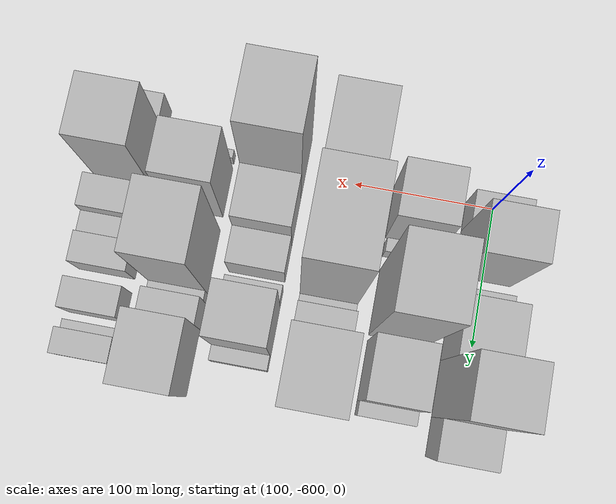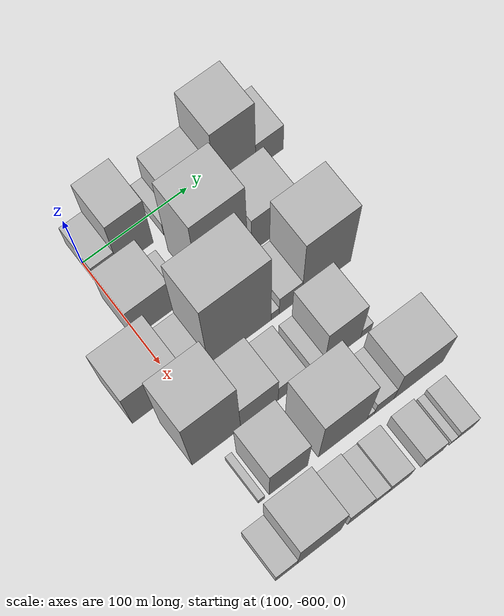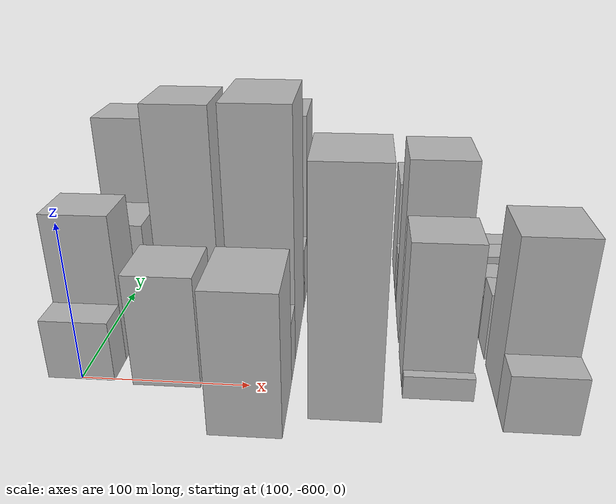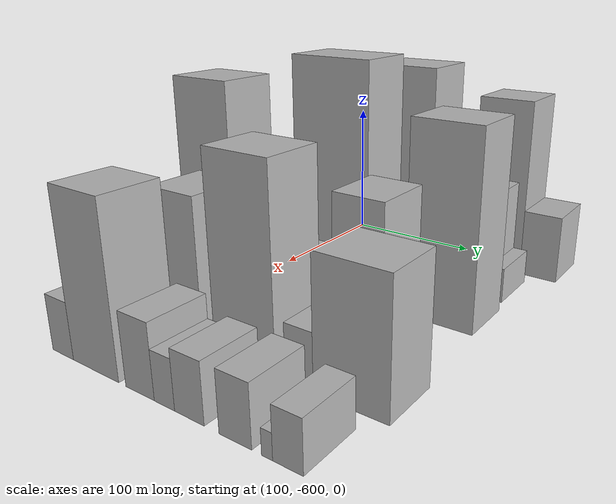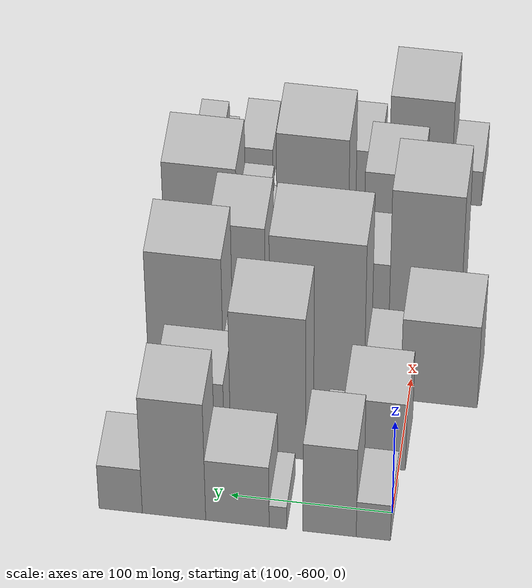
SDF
<sdf version="1.6">
 <world name="default">
  <model name="building_9">
   <static>1</static>
   <pose>100.0000 -590.5228 0 0.000000 0.000000 0.000000</pose>
   <link name="link">
    <pose>0 0 19.50 0 0 0</pose>
    <collision name="collision"><geometry><box><size>40.0000 21.0584 39.0000</size></box></geometry></collision>
    <visual name="visual">
     <cast_shadows>0</cast_shadows>
     <geometry><box><size>40.0000 21.0584 39.0000</size></box></geometry>
     <material>
      <script>
       <uri>model://HANNAS_wall/materials/scripts</uri>
       <uri>model://HANNAS_wall/materials/textures</uri>
       <name>vrc/HANNAS_wall</name>
      </script>
     </material>
    </visual>
   </link>
  </model>
  <model name="building_10">
   <static>1</static>
   <pose>100.0000 -563.5756 0 0.000000 0.000000 0.000000</pose>
   <link name="link">
    <pose>0 0 48.00 0 0 0</pose>
    <collision name="collision"><geometry><box><size>40.0000 32.8358 96.0000</size></box></geometry></collision>
    <visual name="visual">
     <cast_shadows>0</cast_shadows>
     <geometry><box><size>40.0000 32.8358 96.0000</size></box></geometry>
     <material>
      <script>
       <uri>model://HANNAS_wall/materials/scripts</uri>
       <uri>model://HANNAS_wall/materials/textures</uri>
       <name>vrc/HANNAS_wall</name>
      </script>
     </material>
    </visual>
   </link>
  </model>
  <model name="building_11">
   <static>1</static>
   <pose>100.0000 -531.7365 0 0.000000 0.000000 0.000000</pose>
   <link name="link">
    <pose>0 0 12.00 0 0 0</pose>
    <collision name="collision"><geometry><box><size>40.0000 10.8425 24.0000</size></box></geometry></collision>
    <visual name="visual">
     <cast_shadows>0</cast_shadows>
     <geometry><box><size>40.0000 10.8425 24.0000</size></box></geometry>
     <material>
      <script>
       <uri>model://HANNAS_wall/materials/scripts</uri>
       <uri>model://HANNAS_wall/materials/textures</uri>
       <name>vrc/HANNAS_wall</name>
      </script>
     </material>
    </visual>
   </link>
  </model>
  <model name="building_12">
   <static>1</static>
   <pose>100.0000 -506.7196 0 0.000000 0.000000 0.000000</pose>
   <link name="link">
    <pose>0 0 33.00 0 0 0</pose>
    <collision name="collision"><geometry><box><size>40.0000 39.1913 66.0000</size></box></geometry></collision>
    <visual name="visual">
     <cast_shadows>0</cast_shadows>
     <geometry><box><size>40.0000 39.1913 66.0000</size></box></geometry>
     <material>
      <script>
       <uri>model://HANNAS_wall/materials/scripts</uri>
       <uri>model://HANNAS_wall/materials/textures</uri>
       <name>vrc/HANNAS_wall</name>
      </script>
     </material>
    </visual>
   </link>
  </model>
  <model name="building_13">
   <static>1</static>
   <pose>100.0000 -467.5035 0 0.000000 0.000000 0.000000</pose>
   <link name="link">
    <pose>0 0 63.00 0 0 0</pose>
    <collision name="collision"><geometry><box><size>40.0000 39.2408 126.0000</size></box></geometry></collision>
    <visual name="visual">
     <cast_shadows>0</cast_shadows>
     <geometry><box><size>40.0000 39.2408 126.0000</size></box></geometry>
     <material>
      <script>
       <uri>model://HANNAS_wall/materials/scripts</uri>
       <uri>model://HANNAS_wall/materials/textures</uri>
       <name>vrc/HANNAS_wall</name>
      </script>
     </material>
    </visual>
   </link>
  </model>
  <model name="building_14">
   <static>1</static>
   <pose>100.0000 -434.4610 0 0.000000 0.000000 0.000000</pose>
   <link name="link">
    <pose>0 0 24.00 0 0 0</pose>
    <collision name="collision"><geometry><box><size>40.0000 26.8443 48.0000</size></box></geometry></collision>
    <visual name="visual">
     <cast_shadows>0</cast_shadows>
     <geometry><box><size>40.0000 26.8443 48.0000</size></box></geometry>
     <material>
      <script>
       <uri>model://HANNAS_wall/materials/scripts</uri>
       <uri>model://HANNAS_wall/materials/textures</uri>
       <name>vrc/HANNAS_wall</name>
      </script>
     </material>
    </visual>
   </link>
  </model>
  <model name="building_64">
   <static>1</static>
   <pose>152.0000 -584.7914 0 0.000000 0.000000 0.000000</pose>
   <link name="link">
    <pose>0 0 36.00 0 0 0</pose>
    <collision name="collision"><geometry><box><size>40.0000 38.5706 72.0000</size></box></geometry></collision>
    <visual name="visual">
     <cast_shadows>0</cast_shadows>
     <geometry><box><size>40.0000 38.5706 72.0000</size></box></geometry>
     <material>
      <script>
       <uri>model://HANNAS_wall/materials/scripts</uri>
       <uri>model://HANNAS_wall/materials/textures</uri>
       <name>vrc/HANNAS_wall</name>
      </script>
     </material>
    </visual>
   </link>
  </model>
  <model name="building_65">
   <static>1</static>
   <pose>152.0000 -556.7208 0 0.000000 0.000000 0.000000</pose>
   <link name="link">
    <pose>0 0 10.50 0 0 0</pose>
    <collision name="collision"><geometry><box><size>40.0000 9.5705 21.0000</size></box></geometry></collision>
    <visual name="visual">
     <cast_shadows>0</cast_shadows>
     <geometry><box><size>40.0000 9.5705 21.0000</size></box></geometry>
     <material>
      <script>
       <uri>model://HANNAS_wall/materials/scripts</uri>
       <uri>model://HANNAS_wall/materials/textures</uri>
       <name>vrc/HANNAS_wall</name>
      </script>
     </material>
    </visual>
   </link>
  </model>
  <model name="building_66">
   <static>1</static>
   <pose>152.0000 -518.6383 0 0.000000 0.000000 0.000000</pose>
   <link name="link">
    <pose>0 0 75.00 0 0 0</pose>
    <collision name="collision"><geometry><box><size>40.0000 46.5944 150.0000</size></box></geometry></collision>
    <visual name="visual">
     <cast_shadows>0</cast_shadows>
     <geometry><box><size>40.0000 46.5944 150.0000</size></box></geometry>
     <material>
      <script>
       <uri>model://HANNAS_wall/materials/scripts</uri>
       <uri>model://HANNAS_wall/materials/textures</uri>
       <name>vrc/HANNAS_wall</name>
      </script>
     </material>
    </visual>
   </link>
  </model>
  <model name="building_67">
   <static>1</static>
   <pose>152.0000 -470.3975 0 0.000000 0.000000 0.000000</pose>
   <link name="link">
    <pose>0 0 36.00 0 0 0</pose>
    <collision name="collision"><geometry><box><size>40.0000 41.8873 72.0000</size></box></geometry></collision>
    <visual name="visual">
     <cast_shadows>0</cast_shadows>
     <geometry><box><size>40.0000 41.8873 72.0000</size></box></geometry>
     <material>
      <script>
       <uri>model://HANNAS_wall/materials/scripts</uri>
       <uri>model://HANNAS_wall/materials/textures</uri>
       <name>vrc/HANNAS_wall</name>
      </script>
     </material>
    </visual>
   </link>
  </model>
  <model name="building_68">
   <static>1</static>
   <pose>152.0000 -444.4953 0 0.000000 0.000000 0.000000</pose>
   <link name="link">
    <pose>0 0 12.00 0 0 0</pose>
    <collision name="collision"><geometry><box><size>40.0000 9.9171 24.0000</size></box></geometry></collision>
    <visual name="visual">
     <cast_shadows>0</cast_shadows>
     <geometry><box><size>40.0000 9.9171 24.0000</size></box></geometry>
     <material>
      <script>
       <uri>model://HANNAS_wall/materials/scripts</uri>
       <uri>model://HANNAS_wall/materials/textures</uri>
       <name>vrc/HANNAS_wall</name>
      </script>
     </material>
    </visual>
   </link>
  </model>
  <model name="building_106">
   <static>1</static>
   <pose>204.0000 -619.0146 0 0.000000 0.000000 0.000000</pose>
   <link name="link">
    <pose>0 0 43.50 0 0 0</pose>
    <collision name="collision"><geometry><box><size>40.0000 48.0511 87.0000</size></box></geometry></collision>
    <visual name="visual">
     <cast_shadows>0</cast_shadows>
     <geometry><box><size>40.0000 48.0511 87.0000</size></box></geometry>
     <material>
      <script>
       <uri>model://HANNAS_wall/materials/scripts</uri>
       <uri>model://HANNAS_wall/materials/textures</uri>
       <name>vrc/HANNAS_wall</name>
      </script>
     </material>
    </visual>
   </link>
  </model>
  <model name="building_107">
   <static>1</static>
   <pose>204.0000 -583.5288 0 0.000000 0.000000 0.000000</pose>
   <link name="link">
    <pose>0 0 19.50 0 0 0</pose>
    <collision name="collision"><geometry><box><size>40.0000 22.9205 39.0000</size></box></geometry></collision>
    <visual name="visual">
     <cast_shadows>0</cast_shadows>
     <geometry><box><size>40.0000 22.9205 39.0000</size></box></geometry>
     <material>
      <script>
       <uri>model://HANNAS_wall/materials/scripts</uri>
       <uri>model://HANNAS_wall/materials/textures</uri>
       <name>vrc/HANNAS_wall</name>
      </script>
     </material>
    </visual>
   </link>
  </model>
  <model name="building_108">
   <static>1</static>
   <pose>204.0000 -542.5219 0 0.000000 0.000000 0.000000</pose>
   <link name="link">
    <pose>0 0 79.50 0 0 0</pose>
    <collision name="collision"><geometry><box><size>40.0000 59.0932 159.0000</size></box></geometry></collision>
    <visual name="visual">
     <cast_shadows>0</cast_shadows>
     <geometry><box><size>40.0000 59.0932 159.0000</size></box></geometry>
     <material>
      <script>
       <uri>model://HANNAS_wall/materials/scripts</uri>
       <uri>model://HANNAS_wall/materials/textures</uri>
       <name>vrc/HANNAS_wall</name>
      </script>
     </material>
    </visual>
   </link>
  </model>
  <model name="building_109">
   <static>1</static>
   <pose>204.0000 -509.1160 0 0.000000 0.000000 0.000000</pose>
   <link name="link">
    <pose>0 0 9.00 0 0 0</pose>
    <collision name="collision"><geometry><box><size>40.0000 7.7186 18.0000</size></box></geometry></collision>
    <visual name="visual">
     <cast_shadows>0</cast_shadows>
     <geometry><box><size>40.0000 7.7186 18.0000</size></box></geometry>
     <material>
      <script>
       <uri>model://HANNAS_wall/materials/scripts</uri>
       <uri>model://HANNAS_wall/materials/textures</uri>
       <name>vrc/HANNAS_wall</name>
      </script>
     </material>
    </visual>
   </link>
  </model>
  <model name="building_110">
   <static>1</static>
   <pose>204.0000 -494.3942 0 0.000000 0.000000 0.000000</pose>
   <link name="link">
    <pose>0 0 21.00 0 0 0</pose>
    <collision name="collision"><geometry><box><size>40.0000 21.7252 42.0000</size></box></geometry></collision>
    <visual name="visual">
     <cast_shadows>0</cast_shadows>
     <geometry><box><size>40.0000 21.7252 42.0000</size></box></geometry>
     <material>
      <script>
       <uri>model://HANNAS_wall/materials/scripts</uri>
       <uri>model://HANNAS_wall/materials/textures</uri>
       <name>vrc/HANNAS_wall</name>
      </script>
     </material>
    </visual>
   </link>
  </model>
  <model name="building_111">
   <static>1</static>
   <pose>204.0000 -459.8636 0 0.000000 0.000000 0.000000</pose>
   <link name="link">
    <pose>0 0 64.50 0 0 0</pose>
    <collision name="collision"><geometry><box><size>40.0000 47.3360 129.0000</size></box></geometry></collision>
    <visual name="visual">
     <cast_shadows>0</cast_shadows>
     <geometry><box><size>40.0000 47.3360 129.0000</size></box></geometry>
     <material>
      <script>
       <uri>model://HANNAS_wall/materials/scripts</uri>
       <uri>model://HANNAS_wall/materials/textures</uri>
       <name>vrc/HANNAS_wall</name>
      </script>
     </material>
    </visual>
   </link>
  </model>
  <model name="building_157">
   <static>1</static>
   <pose>256.0000 -603.8853 0 0.000000 0.000000 0.000000</pose>
   <link name="link">
    <pose>0 0 73.50 0 0 0</pose>
    <collision name="collision"><geometry><box><size>40.0000 45.0200 147.0000</size></box></geometry></collision>
    <visual name="visual">
     <cast_shadows>0</cast_shadows>
     <geometry><box><size>40.0000 45.0200 147.0000</size></box></geometry>
     <material>
      <script>
       <uri>model://HANNAS_wall/materials/scripts</uri>
       <uri>model://HANNAS_wall/materials/textures</uri>
       <name>vrc/HANNAS_wall</name>
      </script>
     </material>
    </visual>
   </link>
  </model>
  <model name="building_158">
   <static>1</static>
   <pose>256.0000 -563.8449 0 0.000000 0.000000 0.000000</pose>
   <link name="link">
    <pose>0 0 34.50 0 0 0</pose>
    <collision name="collision"><geometry><box><size>40.0000 35.0607 69.0000</size></box></geometry></collision>
    <visual name="visual">
     <cast_shadows>0</cast_shadows>
     <geometry><box><size>40.0000 35.0607 69.0000</size></box></geometry>
     <material>
      <script>
       <uri>model://HANNAS_wall/materials/scripts</uri>
       <uri>model://HANNAS_wall/materials/textures</uri>
       <name>vrc/HANNAS_wall</name>
      </script>
     </material>
    </visual>
   </link>
  </model>
  <model name="building_159">
   <static>1</static>
   <pose>256.0000 -533.7588 0 0.000000 0.000000 0.000000</pose>
   <link name="link">
    <pose>0 0 21.00 0 0 0</pose>
    <collision name="collision"><geometry><box><size>40.0000 25.1114 42.0000</size></box></geometry></collision>
    <visual name="visual">
     <cast_shadows>0</cast_shadows>
     <geometry><box><size>40.0000 25.1114 42.0000</size></box></geometry>
     <material>
      <script>
       <uri>model://HANNAS_wall/materials/scripts</uri>
       <uri>model://HANNAS_wall/materials/textures</uri>
       <name>vrc/HANNAS_wall</name>
      </script>
     </material>
    </visual>
   </link>
  </model>
  <model name="building_160">
   <static>1</static>
   <pose>256.0000 -509.0334 0 0.000000 0.000000 0.000000</pose>
   <link name="link">
    <pose>0 0 13.50 0 0 0</pose>
    <collision name="collision"><geometry><box><size>40.0000 12.3395 27.0000</size></box></geometry></collision>
    <visual name="visual">
     <cast_shadows>0</cast_shadows>
     <geometry><box><size>40.0000 12.3395 27.0000</size></box></geometry>
     <material>
      <script>
       <uri>model://HANNAS_wall/materials/scripts</uri>
       <uri>model://HANNAS_wall/materials/textures</uri>
       <name>vrc/HANNAS_wall</name>
      </script>
     </material>
    </visual>
   </link>
  </model>
  <model name="building_161">
   <static>1</static>
   <pose>256.0000 -485.3179 0 0.000000 0.000000 0.000000</pose>
   <link name="link">
    <pose>0 0 46.50 0 0 0</pose>
    <collision name="collision"><geometry><box><size>40.0000 35.0915 93.0000</size></box></geometry></collision>
    <visual name="visual">
     <cast_shadows>0</cast_shadows>
     <geometry><box><size>40.0000 35.0915 93.0000</size></box></geometry>
     <material>
      <script>
       <uri>model://HANNAS_wall/materials/scripts</uri>
       <uri>model://HANNAS_wall/materials/textures</uri>
       <name>vrc/HANNAS_wall</name>
      </script>
     </material>
    </visual>
   </link>
  </model>
  <model name="building_162">
   <static>1</static>
   <pose>256.0000 -462.5232 0 0.000000 0.000000 0.000000</pose>
   <link name="link">
    <pose>0 0 10.50 0 0 0</pose>
    <collision name="collision"><geometry><box><size>40.0000 10.4977 21.0000</size></box></geometry></collision>
    <visual name="visual">
     <cast_shadows>0</cast_shadows>
     <geometry><box><size>40.0000 10.4977 21.0000</size></box></geometry>
     <material>
      <script>
       <uri>model://HANNAS_wall/materials/scripts</uri>
       <uri>model://HANNAS_wall/materials/textures</uri>
       <name>vrc/HANNAS_wall</name>
      </script>
     </material>
    </visual>
   </link>
  </model>
  <model name="building_206">
   <static>1</static>
   <pose>308.0000 -601.7361 0 0.000000 0.000000 0.000000</pose>
   <link name="link">
    <pose>0 0 7.50 0 0 0</pose>
    <collision name="collision"><geometry><box><size>40.0000 6.0618 15.0000</size></box></geometry></collision>
    <visual name="visual">
     <cast_shadows>0</cast_shadows>
     <geometry><box><size>40.0000 6.0618 15.0000</size></box></geometry>
     <material>
      <script>
       <uri>model://HANNAS_wall/materials/scripts</uri>
       <uri>model://HANNAS_wall/materials/textures</uri>
       <name>vrc/HANNAS_wall</name>
      </script>
     </material>
    </visual>
   </link>
  </model>
  <model name="building_207">
   <static>1</static>
   <pose>308.0000 -576.8756 0 0.000000 0.000000 0.000000</pose>
   <link name="link">
    <pose>0 0 46.50 0 0 0</pose>
    <collision name="collision"><geometry><box><size>40.0000 35.6593 93.0000</size></box></geometry></collision>
    <visual name="visual">
     <cast_shadows>0</cast_shadows>
     <geometry><box><size>40.0000 35.6593 93.0000</size></box></geometry>
     <material>
      <script>
       <uri>model://HANNAS_wall/materials/scripts</uri>
       <uri>model://HANNAS_wall/materials/textures</uri>
       <name>vrc/HANNAS_wall</name>
      </script>
     </material>
    </visual>
   </link>
  </model>
  <model name="building_208">
   <static>1</static>
   <pose>308.0000 -526.1362 0 0.000000 0.000000 0.000000</pose>
   <link name="link">
    <pose>0 0 61.50 0 0 0</pose>
    <collision name="collision"><geometry><box><size>40.0000 45.8196 123.0000</size></box></geometry></collision>
    <visual name="visual">
     <cast_shadows>0</cast_shadows>
     <geometry><box><size>40.0000 45.8196 123.0000</size></box></geometry>
     <material>
      <script>
       <uri>model://HANNAS_wall/materials/scripts</uri>
       <uri>model://HANNAS_wall/materials/textures</uri>
       <name>vrc/HANNAS_wall</name>
      </script>
     </material>
    </visual>
   </link>
  </model>
  <model name="building_209">
   <static>1</static>
   <pose>308.0000 -499.7778 0 0.000000 0.000000 0.000000</pose>
   <link name="link">
    <pose>0 0 7.50 0 0 0</pose>
    <collision name="collision"><geometry><box><size>40.0000 6.8972 15.0000</size></box></geometry></collision>
    <visual name="visual">
     <cast_shadows>0</cast_shadows>
     <geometry><box><size>40.0000 6.8972 15.0000</size></box></geometry>
     <material>
      <script>
       <uri>model://HANNAS_wall/materials/scripts</uri>
       <uri>model://HANNAS_wall/materials/textures</uri>
       <name>vrc/HANNAS_wall</name>
      </script>
     </material>
    </visual>
   </link>
  </model>
  <model name="building_210">
   <static>1</static>
   <pose>308.0000 -486.8607 0 0.000000 0.000000 0.000000</pose>
   <link name="link">
    <pose>0 0 18.00 0 0 0</pose>
    <collision name="collision"><geometry><box><size>40.0000 18.9369 36.0000</size></box></geometry></collision>
    <visual name="visual">
     <cast_shadows>0</cast_shadows>
     <geometry><box><size>40.0000 18.9369 36.0000</size></box></geometry>
     <material>
      <script>
       <uri>model://HANNAS_wall/materials/scripts</uri>
       <uri>model://HANNAS_wall/materials/textures</uri>
       <name>vrc/HANNAS_wall</name>
      </script>
     </material>
    </visual>
   </link>
  </model>
  <model name="building_211">
   <static>1</static>
   <pose>308.0000 -453.8253 0 0.000000 0.000000 0.000000</pose>
   <link name="link">
    <pose>0 0 40.50 0 0 0</pose>
    <collision name="collision"><geometry><box><size>40.0000 47.1340 81.0000</size></box></geometry></collision>
    <visual name="visual">
     <cast_shadows>0</cast_shadows>
     <geometry><box><size>40.0000 47.1340 81.0000</size></box></geometry>
     <material>
      <script>
       <uri>model://HANNAS_wall/materials/scripts</uri>
       <uri>model://HANNAS_wall/materials/textures</uri>
       <name>vrc/HANNAS_wall</name>
      </script>
     </material>
    </visual>
   </link>
  </model>
  <model name="building_258">
   <static>1</static>
   <pose>360.0000 -619.0355 0 0.000000 0.000000 0.000000</pose>
   <link name="link">
    <pose>0 0 18.00 0 0 0</pose>
    <collision name="collision"><geometry><box><size>40.0000 19.8219 36.0000</size></box></geometry></collision>
    <visual name="visual">
     <cast_shadows>0</cast_shadows>
     <geometry><box><size>40.0000 19.8219 36.0000</size></box></geometry>
     <material>
      <script>
       <uri>model://HANNAS_wall/materials/scripts</uri>
       <uri>model://HANNAS_wall/materials/textures</uri>
       <name>vrc/HANNAS_wall</name>
      </script>
     </material>
    </visual>
   </link>
  </model>
  <model name="building_259">
   <static>1</static>
   <pose>360.0000 -588.9811 0 0.000000 0.000000 0.000000</pose>
   <link name="link">
    <pose>0 0 52.50 0 0 0</pose>
    <collision name="collision"><geometry><box><size>40.0000 40.2869 105.0000</size></box></geometry></collision>
    <visual name="visual">
     <cast_shadows>0</cast_shadows>
     <geometry><box><size>40.0000 40.2869 105.0000</size></box></geometry>
     <material>
      <script>
       <uri>model://HANNAS_wall/materials/scripts</uri>
       <uri>model://HANNAS_wall/materials/textures</uri>
       <name>vrc/HANNAS_wall</name>
      </script>
     </material>
    </visual>
   </link>
  </model>
  <model name="building_260">
   <static>1</static>
   <pose>360.0000 -551.4533 0 0.000000 0.000000 0.000000</pose>
   <link name="link">
    <pose>0 0 22.50 0 0 0</pose>
    <collision name="collision"><geometry><box><size>40.0000 22.7687 45.0000</size></box></geometry></collision>
    <visual name="visual">
     <cast_shadows>0</cast_shadows>
     <geometry><box><size>40.0000 22.7687 45.0000</size></box></geometry>
     <material>
      <script>
       <uri>model://HANNAS_wall/materials/scripts</uri>
       <uri>model://HANNAS_wall/materials/textures</uri>
       <name>vrc/HANNAS_wall</name>
      </script>
     </material>
    </visual>
   </link>
  </model>
  <model name="building_261">
   <static>1</static>
   <pose>360.0000 -532.4083 0 0.000000 0.000000 0.000000</pose>
   <link name="link">
    <pose>0 0 15.00 0 0 0</pose>
    <collision name="collision"><geometry><box><size>40.0000 15.3213 30.0000</size></box></geometry></collision>
    <visual name="visual">
     <cast_shadows>0</cast_shadows>
     <geometry><box><size>40.0000 15.3213 30.0000</size></box></geometry>
     <material>
      <script>
       <uri>model://HANNAS_wall/materials/scripts</uri>
       <uri>model://HANNAS_wall/materials/textures</uri>
       <name>vrc/HANNAS_wall</name>
      </script>
     </material>
    </visual>
   </link>
  </model>
  <model name="building_262">
   <static>1</static>
   <pose>360.0000 -514.2329 0 0.000000 0.000000 0.000000</pose>
   <link name="link">
    <pose>0 0 18.00 0 0 0</pose>
    <collision name="collision"><geometry><box><size>40.0000 21.0295 36.0000</size></box></geometry></collision>
    <visual name="visual">
     <cast_shadows>0</cast_shadows>
     <geometry><box><size>40.0000 21.0295 36.0000</size></box></geometry>
     <material>
      <script>
       <uri>model://HANNAS_wall/materials/scripts</uri>
       <uri>model://HANNAS_wall/materials/textures</uri>
       <name>vrc/HANNAS_wall</name>
      </script>
     </material>
    </visual>
   </link>
  </model>
  <model name="building_263">
   <static>1</static>
   <pose>360.0000 -483.1957 0 0.000000 0.000000 0.000000</pose>
   <link name="link">
    <pose>0 0 18.00 0 0 0</pose>
    <collision name="collision"><geometry><box><size>40.0000 21.0449 36.0000</size></box></geometry></collision>
    <visual name="visual">
     <cast_shadows>0</cast_shadows>
     <geometry><box><size>40.0000 21.0449 36.0000</size></box></geometry>
     <material>
      <script>
       <uri>model://HANNAS_wall/materials/scripts</uri>
       <uri>model://HANNAS_wall/materials/textures</uri>
       <name>vrc/HANNAS_wall</name>
      </script>
     </material>
    </visual>
   </link>
  </model>
  <model name="building_264">
   <static>1</static>
   <pose>360.0000 -463.3351 0 0.000000 0.000000 0.000000</pose>
   <link name="link">
    <pose>0 0 7.50 0 0 0</pose>
    <collision name="collision"><geometry><box><size>40.0000 6.6763 15.0000</size></box></geometry></collision>
    <visual name="visual">
     <cast_shadows>0</cast_shadows>
     <geometry><box><size>40.0000 6.6763 15.0000</size></box></geometry>
     <material>
      <script>
       <uri>model://HANNAS_wall/materials/scripts</uri>
       <uri>model://HANNAS_wall/materials/textures</uri>
       <name>vrc/HANNAS_wall</name>
      </script>
     </material>
    </visual>
   </link>
  </model>
  <model name="building_265">
   <static>1</static>
   <pose>360.0000 -451.0975 0 0.000000 0.000000 0.000000</pose>
   <link name="link">
    <pose>0 0 15.00 0 0 0</pose>
    <collision name="collision"><geometry><box><size>40.0000 17.7987 30.0000</size></box></geometry></collision>
    <visual name="visual">
     <cast_shadows>0</cast_shadows>
     <geometry><box><size>40.0000 17.7987 30.0000</size></box></geometry>
     <material>
      <script>
       <uri>model://HANNAS_wall/materials/scripts</uri>
       <uri>model://HANNAS_wall/materials/textures</uri>
       <name>vrc/HANNAS_wall</name>
      </script>
     </material>
    </visual>
   </link>
  </model>
 </world>
</sdf>
